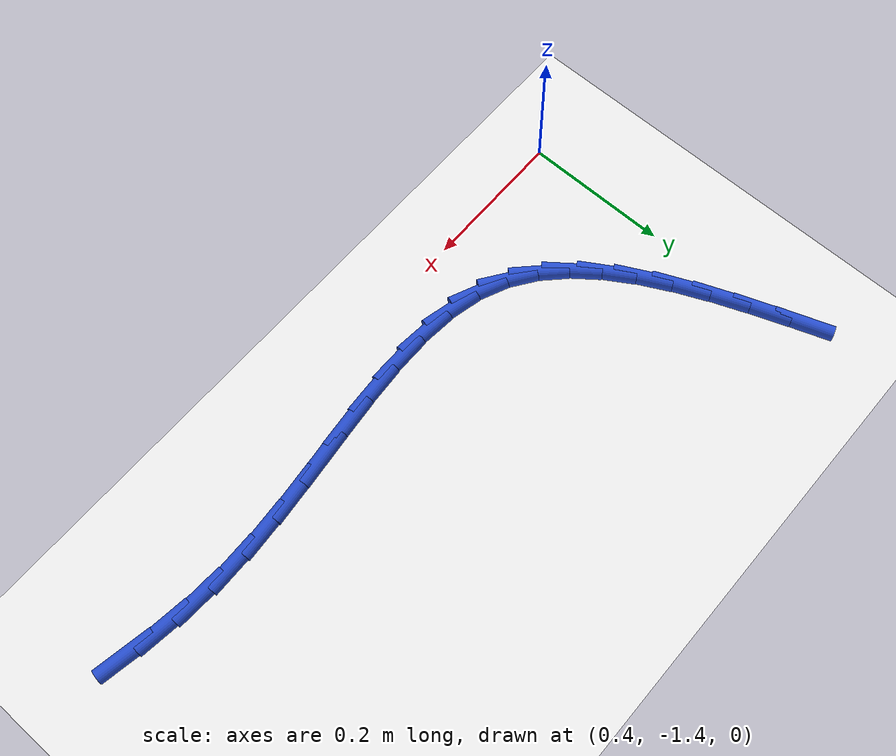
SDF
<sdf version="1.6">
 <world name="default">
  <model name="ground_plane">
   <static>1</static>
   <link name="link">
    <collision name="collision">
     <geometry><plane><normal>0 0 1</normal><size>100 100</size></plane></geometry>
     <surface><friction><ode><mu>100</mu><mu2>50</mu2></ode></friction></surface>
    </collision>
    <visual name="visual">
     <cast_shadows>0</cast_shadows>
     <geometry><plane><normal>0 0 1</normal><size>100 100</size></plane></geometry>
     <material>
      <script><uri>file://media/materials/scripts/gazebo.material</uri><name>Gazebo/WhiteGlow</name></script>
     </material>
    </visual>
   </link>
  </model>
  <model name="line">
   <link name="link_129">
    <pose>1.2432580363914185 -1.3262677548726647 0.01 0 1.57 -0.1792072021414065</pose>
    <collision name="collision">
     <geometry><cylinder><radius>0.01</radius><length>0.08</length></cylinder></geometry>
    </collision>
    <visual name="visual">
     <material>
      <script><name>Gazebo/Blue</name><uri>file://media/materials/scripts/gazebo.material</uri></script>
     </material>
     <geometry><cylinder><radius>0.01</radius><length>0.08</length></cylinder></geometry>
    </visual>
   </link>
   <link name="link_130">
    <pose>1.1917033852713783 -1.3169285990281856 0.01 0 1.57 -0.12114234039094994</pose>
    <collision name="collision">
     <geometry><cylinder><radius>0.01</radius><length>0.08</length></cylinder></geometry>
    </collision>
    <visual name="visual">
     <material>
      <script><name>Gazebo/Blue</name><uri>file://media/materials/scripts/gazebo.material</uri></script>
     </material>
     <geometry><cylinder><radius>0.01</radius><length>0.08</length></cylinder></geometry>
    </visual>
   </link>
   <link name="link_131">
    <pose>1.1391342856813622 -1.3105289185006068 0.01 0 1.57 -0.0461455205331143</pose>
    <collision name="collision">
     <geometry><cylinder><radius>0.01</radius><length>0.08</length></cylinder></geometry>
    </collision>
    <visual name="visual">
     <material>
      <script><name>Gazebo/Blue</name><uri>file://media/materials/scripts/gazebo.material</uri></script>
     </material>
     <geometry><cylinder><radius>0.01</radius><length>0.08</length></cylinder></geometry>
    </visual>
   </link>
   <link name="link_132">
    <pose>1.0853581497801412 -1.308045627819679 0.01 0 1.57 0.02812345195951831</pose>
    <collision name="collision">
     <geometry><cylinder><radius>0.01</radius><length>0.08</length></cylinder></geometry>
    </collision>
    <visual name="visual">
     <material>
      <script><name>Gazebo/Blue</name><uri>file://media/materials/scripts/gazebo.material</uri></script>
     </material>
     <geometry><cylinder><radius>0.01</radius><length>0.08</length></cylinder></geometry>
    </visual>
   </link>
   <link name="link_133">
    <pose>1.0304863640459412 -1.3095892188279004 0.01 0 1.57 0.0797138087030484</pose>
    <collision name="collision">
     <geometry><cylinder><radius>0.01</radius><length>0.08</length></cylinder></geometry>
    </collision>
    <visual name="visual">
     <material>
      <script><name>Gazebo/Blue</name><uri>file://media/materials/scripts/gazebo.material</uri></script>
     </material>
     <geometry><cylinder><radius>0.01</radius><length>0.08</length></cylinder></geometry>
    </visual>
   </link>
   <link name="link_134">
    <pose>0.9750703225537494 -1.314016022933856 0.01 0 1.57 0.10914950244660061</pose>
    <collision name="collision">
     <geometry><cylinder><radius>0.01</radius><length>0.08</length></cylinder></geometry>
    </collision>
    <visual name="visual">
     <material>
      <script><name>Gazebo/Blue</name><uri>file://media/materials/scripts/gazebo.material</uri></script>
     </material>
     <geometry><cylinder><radius>0.01</radius><length>0.08</length></cylinder></geometry>
    </visual>
   </link>
   <link name="link_135">
    <pose>0.919695848932858 -1.3200842364568994 0.01 0 1.57 0.1175949099078932</pose>
    <collision name="collision">
     <geometry><cylinder><radius>0.01</radius><length>0.08</length></cylinder></geometry>
    </collision>
    <visual name="visual">
     <material>
      <script><name>Gazebo/Blue</name><uri>file://media/materials/scripts/gazebo.material</uri></script>
     </material>
     <geometry><cylinder><radius>0.01</radius><length>0.08</length></cylinder></geometry>
    </visual>
   </link>
   <link name="link_136">
    <pose>0.8649487668125592 -1.3265520557163872 0.01 0 1.57 0.10470100532082097</pose>
    <collision name="collision">
     <geometry><cylinder><radius>0.01</radius><length>0.08</length></cylinder></geometry>
    </collision>
    <visual name="visual">
     <material>
      <script><name>Gazebo/Blue</name><uri>file://media/materials/scripts/gazebo.material</uri></script>
     </material>
     <geometry><cylinder><radius>0.01</radius><length>0.08</length></cylinder></geometry>
    </visual>
   </link>
   <link name="link_137">
    <pose>0.8114148998221481 -1.3321776770316738 0.01 0 1.57 0.06835052619520303</pose>
    <collision name="collision">
     <geometry><cylinder><radius>0.01</radius><length>0.08</length></cylinder></geometry>
    </collision>
    <visual name="visual">
     <material>
      <script><name>Gazebo/Blue</name><uri>file://media/materials/scripts/gazebo.material</uri></script>
     </material>
     <geometry><cylinder><radius>0.01</radius><length>0.08</length></cylinder></geometry>
    </visual>
   </link>
   <link name="link_138">
    <pose>0.7596800715909166 -1.335719296722115 0.01 0 1.57 0.004373113648801396</pose>
    <collision name="collision">
     <geometry><cylinder><radius>0.01</radius><length>0.08</length></cylinder></geometry>
    </collision>
    <visual name="visual">
     <material>
      <script><name>Gazebo/Blue</name><uri>file://media/materials/scripts/gazebo.material</uri></script>
     </material>
     <geometry><cylinder><radius>0.01</radius><length>0.08</length></cylinder></geometry>
    </visual>
   </link>
   <link name="link_139">
    <pose>0.7103301057481576 -1.3359351111070652 0.01 0 1.57 -0.09355665584110565</pose>
    <collision name="collision">
     <geometry><cylinder><radius>0.01</radius><length>0.08</length></cylinder></geometry>
    </collision>
    <visual name="visual">
     <material>
      <script><name>Gazebo/Blue</name><uri>file://media/materials/scripts/gazebo.material</uri></script>
     </material>
     <geometry><cylinder><radius>0.01</radius><length>0.08</length></cylinder></geometry>
    </visual>
   </link>
   <link name="link_140">
    <pose>0.6639508259231639 -1.3315833165058804 0.01 0 1.57 -0.23297640871132172</pose>
    <collision name="collision">
     <geometry><cylinder><radius>0.01</radius><length>0.08</length></cylinder></geometry>
    </collision>
    <visual name="visual">
     <material>
      <script><name>Gazebo/Blue</name><uri>file://media/materials/scripts/gazebo.material</uri></script>
     </material>
     <geometry><cylinder><radius>0.01</radius><length>0.08</length></cylinder></geometry>
    </visual>
   </link>
   <link name="link_141">
    <pose>0.6211280557452287 -1.3214221092379155 0.01 0 1.57 -0.41698813422462583</pose>
    <collision name="collision">
     <geometry><cylinder><radius>0.01</radius><length>0.08</length></cylinder></geometry>
    </collision>
    <visual name="visual">
     <material>
      <script><name>Gazebo/Blue</name><uri>file://media/materials/scripts/gazebo.material</uri></script>
     </material>
     <geometry><cylinder><radius>0.01</radius><length>0.08</length></cylinder></geometry>
    </visual>
   </link>
   <link name="link_142">
    <pose>0.58241364002198 -1.3042729829355324 0.01 0 1.57 -0.611471641254122</pose>
    <collision name="collision">
     <geometry><cylinder><radius>0.01</radius><length>0.08</length></cylinder></geometry>
    </collision>
    <visual name="visual">
     <material>
      <script><name>Gazebo/Blue</name><uri>file://media/materials/scripts/gazebo.material</uri></script>
     </material>
     <geometry><cylinder><radius>0.01</radius><length>0.08</length></cylinder></geometry>
    </visual>
   </link>
   <link name="link_143">
    <pose>0.5477978915961169 -1.280003478822115 0.01 0 1.57 -0.7801326357452844</pose>
    <collision name="collision">
     <geometry><cylinder><radius>0.01</radius><length>0.08</length></cylinder></geometry>
    </collision>
    <visual name="visual">
     <material>
      <script><name>Gazebo/Blue</name><uri>file://media/materials/scripts/gazebo.material</uri></script>
     </material>
     <geometry><cylinder><radius>0.01</radius><length>0.08</length></cylinder></geometry>
    </visual>
   </link>
   <link name="link_144">
    <pose>0.5168099732729083 -1.249340189637035 0.01 0 1.57 -0.9165276541409897</pose>
    <collision name="collision">
     <geometry><cylinder><radius>0.01</radius><length>0.08</length></cylinder></geometry>
    </collision>
    <visual name="visual">
     <material>
      <script><name>Gazebo/Blue</name><uri>file://media/materials/scripts/gazebo.material</uri></script>
     </material>
     <geometry><cylinder><radius>0.01</radius><length>0.08</length></cylinder></geometry>
    </visual>
   </link>
   <link name="link_145">
    <pose>0.4889653898453975 -1.2130351508935049 0.01 0 1.57 -1.0220494800664488</pose>
    <collision name="collision">
     <geometry><cylinder><radius>0.01</radius><length>0.08</length></cylinder></geometry>
    </collision>
    <visual name="visual">
     <material>
      <script><name>Gazebo/Blue</name><uri>file://media/materials/scripts/gazebo.material</uri></script>
     </material>
     <geometry><cylinder><radius>0.01</radius><length>0.08</length></cylinder></geometry>
    </visual>
   </link>
   <link name="link_146">
    <pose>0.4637796461066283 -1.1718403981047367 0.01 0 1.57 -1.1010756934499077</pose>
    <collision name="collision">
     <geometry><cylinder><radius>0.01</radius><length>0.08</length></cylinder></geometry>
    </collision>
    <visual name="visual">
     <material>
      <script><name>Gazebo/Blue</name><uri>file://media/materials/scripts/gazebo.material</uri></script>
     </material>
     <geometry><cylinder><radius>0.01</radius><length>0.08</length></cylinder></geometry>
    </visual>
   </link>
   <link name="link_147">
    <pose>0.44076824684964366 -1.126507966783942 0.01 0 1.57 -1.1582585305755544</pose>
    <collision name="collision">
     <geometry><cylinder><radius>0.01</radius><length>0.08</length></cylinder></geometry>
    </collision>
    <visual name="visual">
     <material>
      <script><name>Gazebo/Blue</name><uri>file://media/materials/scripts/gazebo.material</uri></script>
     </material>
     <geometry><cylinder><radius>0.01</radius><length>0.08</length></cylinder></geometry>
    </visual>
   </link>
   <link name="link_148">
    <pose>0.4194466968674879 -1.0777898924443345 0.01 0 1.57 -1.1974361238496798</pose>
    <collision name="collision">
     <geometry><cylinder><radius>0.01</radius><length>0.08</length></cylinder></geometry>
    </collision>
    <visual name="visual">
     <material>
      <script><name>Gazebo/Blue</name><uri>file://media/materials/scripts/gazebo.material</uri></script>
     </material>
     <geometry><cylinder><radius>0.01</radius><length>0.08</length></cylinder></geometry>
    </visual>
   </link>
   <link name="link_149">
    <pose>0.39933050095320405 -1.026438210599125 0.01 0 1.57 -1.221398475627899</pose>
    <collision name="collision">
     <geometry><cylinder><radius>0.01</radius><length>0.08</length></cylinder></geometry>
    </collision>
    <visual name="visual">
     <material>
      <script><name>Gazebo/Blue</name><uri>file://media/materials/scripts/gazebo.material</uri></script>
     </material>
     <geometry><cylinder><radius>0.01</radius><length>0.08</length></cylinder></geometry>
    </visual>
   </link>
   <link name="link_150">
    <pose>0.3799351638998357 -0.9732049567615264 0.01 0 1.57 -1.2319600537601174</pose>
    <collision name="collision">
     <geometry><cylinder><radius>0.01</radius><length>0.08</length></cylinder></geometry>
    </collision>
    <visual name="visual">
     <material>
      <script><name>Gazebo/Blue</name><uri>file://media/materials/scripts/gazebo.material</uri></script>
     </material>
     <geometry><cylinder><radius>0.01</radius><length>0.08</length></cylinder></geometry>
    </visual>
   </link>
  </model>
 </world>
</sdf>
